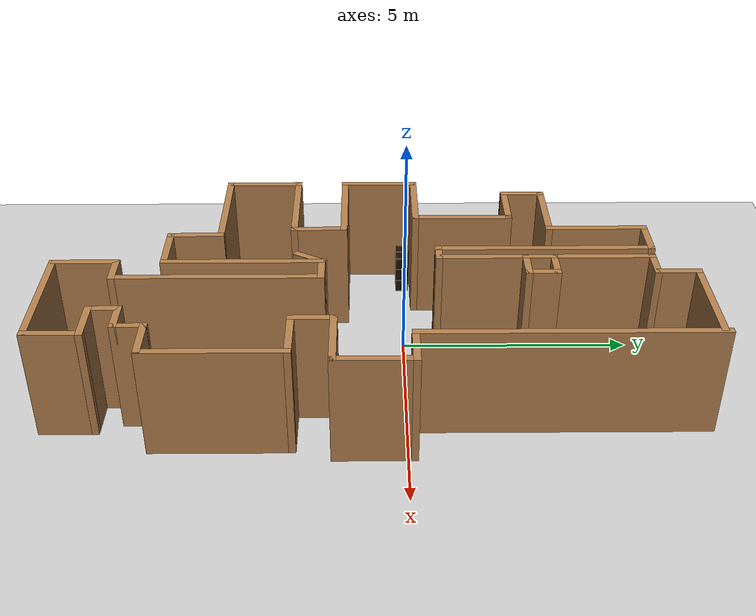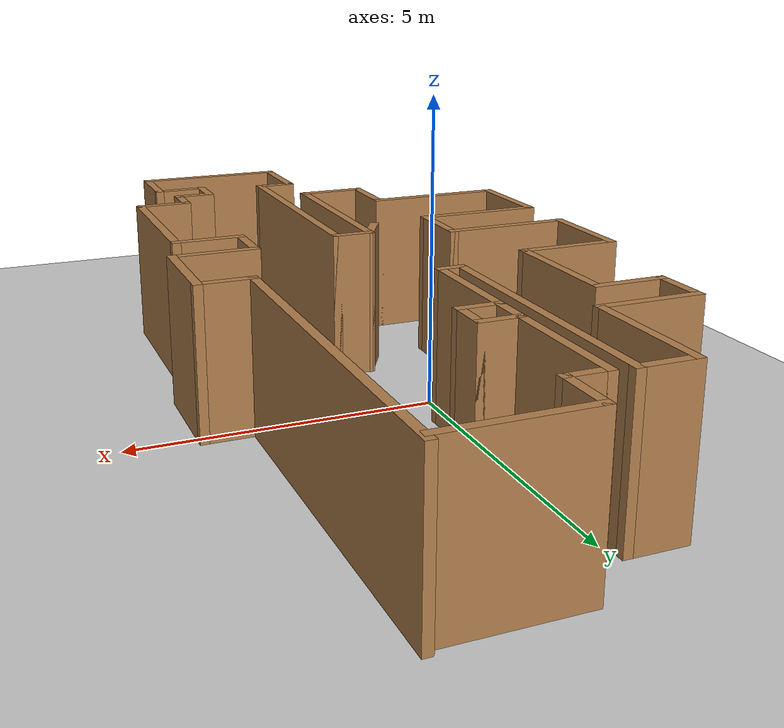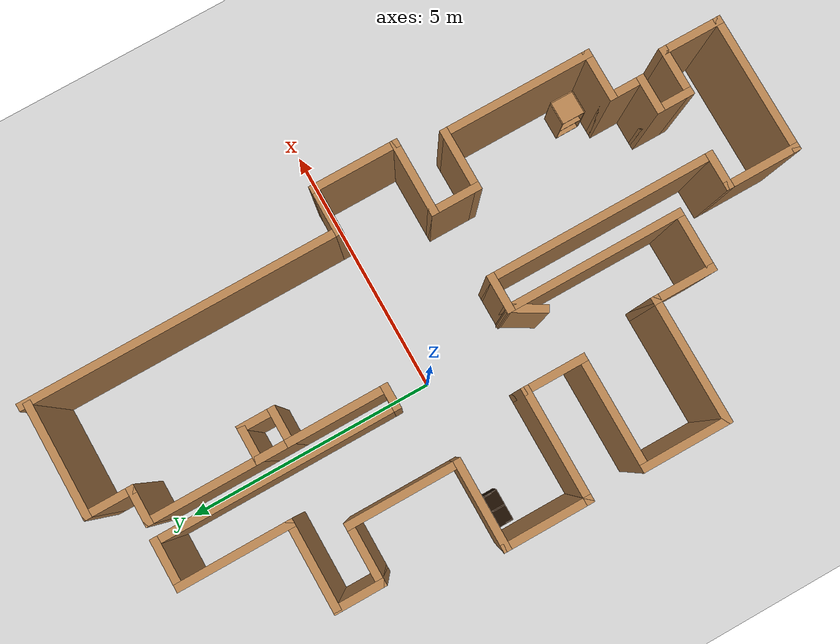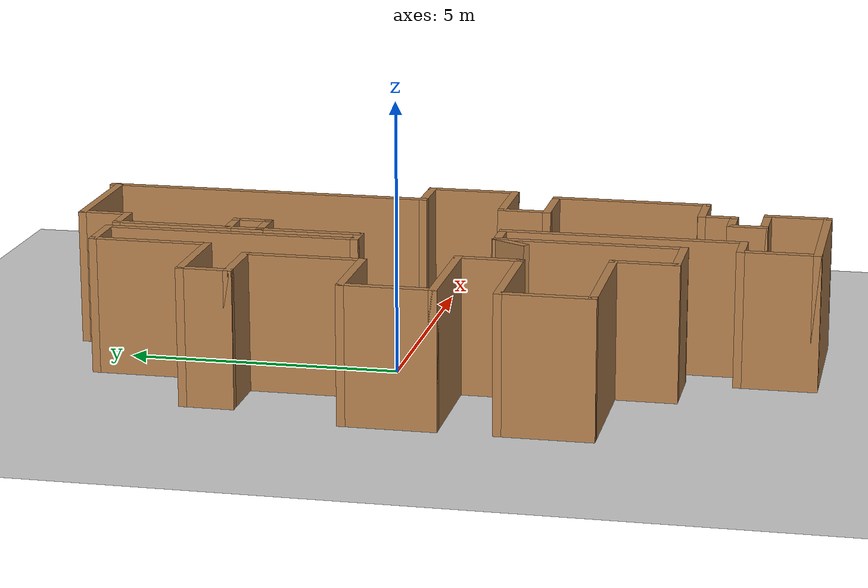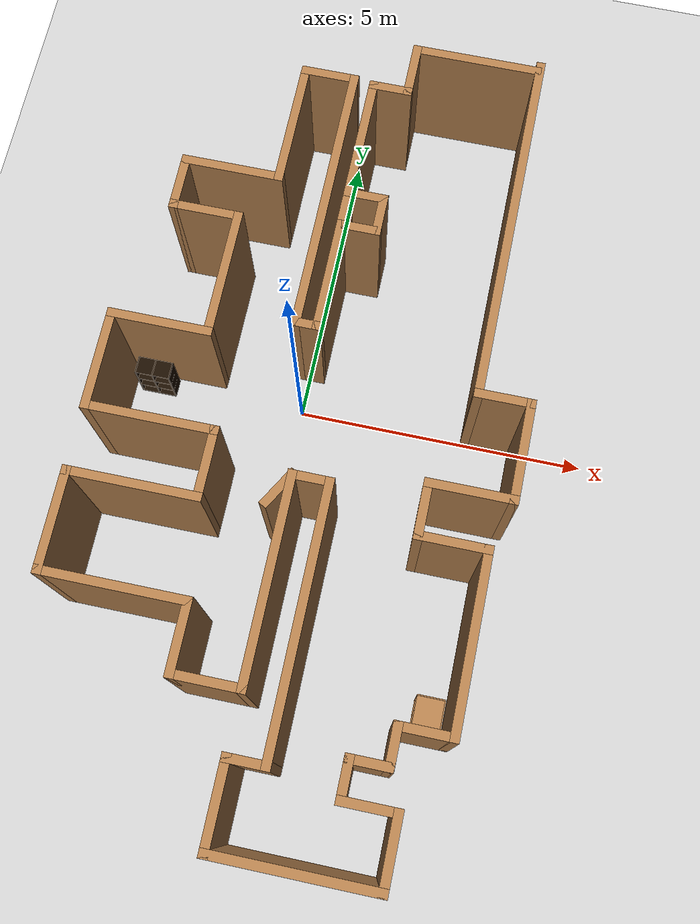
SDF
<sdf version="1.6">
 <world name="default">
  <light name="sun" type="directional">
   <pose>0 0 10 0 -0 0</pose>
   <diffuse>0.8 0.8 0.8 1</diffuse>
   <specular>0.2 0.2 0.2 1</specular>
   <attenuation>
    <range>1000</range>
    <constant>0.9</constant>
    <linear>0.01</linear>
    <quadratic>0.001</quadratic>
   </attenuation>
   <direction>-0.5 0.1 -0.9</direction>
  </light>
  <model name="ground_plane">
   <static>1</static>
   <link name="link">
    <collision name="collision">
     <geometry><plane><normal>0 0 1</normal><size>100 100</size></plane></geometry>
     <surface>
      <contact><collide_bitmask>65535</collide_bitmask></contact>
      <friction><ode><mu>100</mu><mu2>50</mu2></ode></friction>
     </surface>
    </collision>
    <visual name="visual">
     <cast_shadows>0</cast_shadows>
     <geometry><plane><normal>0 0 1</normal><size>100 100</size></plane></geometry>
     <material>
      <script><uri>file://media/materials/scripts/gazebo.material</uri><name>Gazebo/Grey</name></script>
     </material>
    </visual>
   </link>
  </model>
  <gravity>0 0 -9.8</gravity>
  <magnetic_field>6e-06 2.3e-05 -4.2e-05</magnetic_field>
  <atmosphere type="adiabatic"/>
  <physics name="default_physics" default="0" type="ode">
   <max_step_size>0.001</max_step_size>
   <real_time_factor>1</real_time_factor>
   <real_time_update_rate>1000</real_time_update_rate>
  </physics>
  <scene><ambient>0.4 0.4 0.4 1</ambient><background>0.7 0.7 0.7 1</background><shadows>1</shadows></scene>
  <audio><device>default</device></audio>
  <spherical_coordinates>
   <surface_model>EARTH_WGS84</surface_model>
   <latitude_deg>0</latitude_deg>
   <longitude_deg>0</longitude_deg>
   <elevation>0</elevation>
   <heading_deg>0</heading_deg>
  </spherical_coordinates>
  <model name="map_67">
   <pose>0.3366 -0.62153 0 0 -0 0</pose>
   <link name="Wall_10">
    <collision name="Wall_10_Collision">
     <geometry><box><size>2.25 0.15 2.5</size></box></geometry>
     <pose>0 0 1.25 0 -0 0</pose>
    </collision>
    <visual name="Wall_10_Visual">
     <pose>0 0 1.25 0 -0 0</pose>
     <geometry><box><size>2.25 0.15 2.5</size></box></geometry>
     <material>
      <script><uri>file://media/materials/scripts/gazebo.material</uri><name>Gazebo/Wood</name></script>
      <ambient>1 1 1 1</ambient>
     </material>
     <meta><layer>0</layer></meta>
    </visual>
    <pose>1.5 6.75 0 0 -0 3.14159</pose>
   </link>
   <link name="Wall_11">
    <collision name="Wall_11_Collision">
     <geometry><box><size>1 0.15 2.5</size></box></geometry>
     <pose>0 0 1.25 0 -0 0</pose>
    </collision>
    <visual name="Wall_11_Visual">
     <pose>0 0 1.25 0 -0 0</pose>
     <geometry><box><size>1 0.15 2.5</size></box></geometry>
     <material>
      <script><uri>file://media/materials/scripts/gazebo.material</uri><name>Gazebo/Wood</name></script>
      <ambient>1 1 1 1</ambient>
     </material>
     <meta><layer>0</layer></meta>
    </visual>
    <pose>0.45 6.325 0 0 -0 -1.5708</pose>
   </link>
   <link name="Wall_12">
    <collision name="Wall_12_Collision">
     <geometry><box><size>0.75 0.15 2.5</size></box></geometry>
     <pose>0 0 1.25 0 -0 0</pose>
    </collision>
    <visual name="Wall_12_Visual">
     <pose>0 0 1.25 0 -0 0</pose>
     <geometry><box><size>0.75 0.15 2.5</size></box></geometry>
     <material>
      <script><uri>file://media/materials/scripts/gazebo.material</uri><name>Gazebo/Wood</name></script>
      <ambient>1 1 1 1</ambient>
     </material>
     <meta><layer>0</layer></meta>
    </visual>
    <pose>0.15 5.9 0 0 -0 3.14159</pose>
   </link>
   <link name="Wall_13">
    <collision name="Wall_13_Collision">
     <geometry><box><size>2.25 0.15 2.5</size></box></geometry>
     <pose>0 0 1.25 0 -0 0</pose>
    </collision>
    <visual name="Wall_13_Visual">
     <pose>0 0 1.25 0 -0 0</pose>
     <geometry><box><size>2.25 0.15 2.5</size></box></geometry>
     <material>
      <script><uri>file://media/materials/scripts/gazebo.material</uri><name>Gazebo/Wood</name></script>
      <ambient>1 1 1 1</ambient>
     </material>
     <meta><layer>0</layer></meta>
    </visual>
    <pose>-0.15 4.85 0 0 -0 -1.5708</pose>
   </link>
   <link name="Wall_14">
    <collision name="Wall_14_Collision">
     <geometry><box><size>0.75 0.15 2.5</size></box></geometry>
     <pose>0 0 1.25 0 -0 0</pose>
    </collision>
    <visual name="Wall_14_Visual">
     <pose>0 0 1.25 0 -0 0</pose>
     <geometry><box><size>0.75 0.15 2.5</size></box></geometry>
     <material>
      <script><uri>file://media/materials/scripts/gazebo.material</uri><name>Gazebo/Wood</name></script>
      <ambient>1 1 1 1</ambient>
     </material>
     <meta><layer>0</layer></meta>
    </visual>
    <pose>0.15 3.8 0 0 -0 0</pose>
   </link>
   <link name="Wall_15">
    <collision name="Wall_15_Collision">
     <geometry><box><size>0.75 0.15 2.5</size></box></geometry>
     <pose>0 0 1.25 0 -0 0</pose>
    </collision>
    <visual name="Wall_15_Visual">
     <pose>0 0 1.25 0 -0 0</pose>
     <geometry><box><size>0.75 0.15 2.5</size></box></geometry>
     <material>
      <script><uri>file://media/materials/scripts/gazebo.material</uri><name>Gazebo/Wood</name></script>
      <ambient>1 1 1 1</ambient>
     </material>
     <meta><layer>0</layer></meta>
    </visual>
    <pose>0.45 3.5 0 0 -0 -1.5708</pose>
   </link>
   <link name="Wall_16">
    <collision name="Wall_16_Collision">
     <geometry><box><size>0.75 0.15 2.5</size></box></geometry>
     <pose>0 0 1.25 0 -0 0</pose>
    </collision>
    <visual name="Wall_16_Visual">
     <pose>0 0 1.25 0 -0 0</pose>
     <geometry><box><size>0.75 0.15 2.5</size></box></geometry>
     <material>
      <script><uri>file://media/materials/scripts/gazebo.material</uri><name>Gazebo/Wood</name></script>
      <ambient>1 1 1 1</ambient>
     </material>
     <meta><layer>0</layer></meta>
    </visual>
    <pose>0.15 3.2 0 0 -0 3.14159</pose>
   </link>
   <link name="Wall_17">
    <collision name="Wall_17_Collision">
     <geometry><box><size>2 0.15 2.5</size></box></geometry>
     <pose>0 0 1.25 0 -0 0</pose>
    </collision>
    <visual name="Wall_17_Visual">
     <pose>0 0 1.25 0 -0 0</pose>
     <geometry><box><size>2 0.15 2.5</size></box></geometry>
     <material>
      <script><uri>file://media/materials/scripts/gazebo.material</uri><name>Gazebo/Wood</name></script>
      <ambient>1 1 1 1</ambient>
     </material>
     <meta><layer>0</layer></meta>
    </visual>
    <pose>-0.15 2.275 0 0 -0 -1.5708</pose>
   </link>
   <link name="Wall_19">
    <collision name="Wall_19_Collision">
     <geometry><box><size>0.75 0.15 2.5</size></box></geometry>
     <pose>0 0 1.25 0 -0 0</pose>
    </collision>
    <visual name="Wall_19_Visual">
     <pose>0 0 1.25 0 -0 0</pose>
     <geometry><box><size>0.75 0.15 2.5</size></box></geometry>
     <material>
      <script><uri>file://media/materials/scripts/gazebo.material</uri><name>Gazebo/Wood</name></script>
      <ambient>1 1 1 1</ambient>
     </material>
     <meta><layer>0</layer></meta>
    </visual>
    <pose>-0.15 3.5 0 0 -0 -1.5708</pose>
   </link>
   <link name="Wall_21">
    <collision name="Wall_21_Collision">
     <geometry><box><size>0.5 0.15 2.5</size></box></geometry>
     <pose>0 0 1.25 0 -0 0</pose>
    </collision>
    <visual name="Wall_21_Visual">
     <pose>0 0 1.25 0 -0 0</pose>
     <geometry><box><size>0.5 0.15 2.5</size></box></geometry>
     <material>
      <script><uri>file://media/materials/scripts/gazebo.material</uri><name>Gazebo/Wood</name></script>
      <ambient>1 1 1 1</ambient>
     </material>
     <meta><layer>0</layer></meta>
    </visual>
    <pose>-0.325 1.35 0 0 -0 3.14159</pose>
   </link>
   <link name="Wall_22">
    <collision name="Wall_22_Collision">
     <geometry><box><size>4.75 0.15 2.5</size></box></geometry>
     <pose>0 0 1.25 0 -0 0</pose>
    </collision>
    <visual name="Wall_22_Visual">
     <pose>0 0 1.25 0 -0 0</pose>
     <geometry><box><size>4.75 0.15 2.5</size></box></geometry>
     <material>
      <script><uri>file://media/materials/scripts/gazebo.material</uri><name>Gazebo/Wood</name></script>
      <ambient>1 1 1 1</ambient>
     </material>
     <meta><layer>0</layer></meta>
    </visual>
    <pose>-0.5 3.65 0 0 -0 1.5708</pose>
   </link>
   <link name="Wall_23">
    <collision name="Wall_23_Collision">
     <geometry><box><size>1 0.15 2.5</size></box></geometry>
     <pose>0 0 1.25 0 -0 0</pose>
    </collision>
    <visual name="Wall_23_Visual">
     <pose>0 0 1.25 0 -0 0</pose>
     <geometry><box><size>1 0.15 2.5</size></box></geometry>
     <material>
      <script><uri>file://media/materials/scripts/gazebo.material</uri><name>Gazebo/Wood</name></script>
      <ambient>1 1 1 1</ambient>
     </material>
     <meta><layer>0</layer></meta>
    </visual>
    <pose>-0.925 5.95 0 0 -0 3.14159</pose>
   </link>
   <link name="Wall_24">
    <collision name="Wall_24_Collision">
     <geometry><box><size>2.25 0.15 2.5</size></box></geometry>
     <pose>0 0 1.25 0 -0 0</pose>
    </collision>
    <visual name="Wall_24_Visual">
     <pose>0 0 1.25 0 -0 0</pose>
     <geometry><box><size>2.25 0.15 2.5</size></box></geometry>
     <material>
      <script><uri>file://media/materials/scripts/gazebo.material</uri><name>Gazebo/Wood</name></script>
      <ambient>1 1 1 1</ambient>
     </material>
     <meta><layer>0</layer></meta>
    </visual>
    <pose>-1.35 4.9 0 0 -0 -1.5708</pose>
   </link>
   <link name="Wall_25">
    <collision name="Wall_25_Collision">
     <geometry><box><size>1.75 0.15 2.5</size></box></geometry>
     <pose>0 0 1.25 0 -0 0</pose>
    </collision>
    <visual name="Wall_25_Visual">
     <pose>0 0 1.25 0 -0 0</pose>
     <geometry><box><size>1.75 0.15 2.5</size></box></geometry>
     <material>
      <script><uri>file://media/materials/scripts/gazebo.material</uri><name>Gazebo/Wood</name></script>
      <ambient>1 1 1 1</ambient>
     </material>
     <meta><layer>0</layer></meta>
    </visual>
    <pose>-2.15 3.85 0 0 -0 3.14159</pose>
   </link>
   <link name="Wall_26">
    <collision name="Wall_26_Collision">
     <geometry><box><size>1 0.15 2.5</size></box></geometry>
     <pose>0 0 1.25 0 -0 0</pose>
    </collision>
    <visual name="Wall_26_Visual">
     <pose>0 0 1.25 0 -0 0</pose>
     <geometry><box><size>1 0.15 2.5</size></box></geometry>
     <material>
      <script><uri>file://media/materials/scripts/gazebo.material</uri><name>Gazebo/Wood</name></script>
      <ambient>1 1 1 1</ambient>
     </material>
     <meta><layer>0</layer></meta>
    </visual>
    <pose>-2.95 3.425 0 0 -0 -1.5708</pose>
   </link>
   <link name="Wall_27">
    <collision name="Wall_27_Collision">
     <geometry><box><size>1.25 0.15 2.5</size></box></geometry>
     <pose>0 0 1.25 0 -0 0</pose>
    </collision>
    <visual name="Wall_27_Visual">
     <pose>0 0 1.25 0 -0 0</pose>
     <geometry><box><size>1.25 0.15 2.5</size></box></geometry>
     <material>
      <script><uri>file://media/materials/scripts/gazebo.material</uri><name>Gazebo/Wood</name></script>
      <ambient>1 1 1 1</ambient>
     </material>
     <meta><layer>0</layer></meta>
    </visual>
    <pose>-2.4 3 0 0 -0 0</pose>
   </link>
   <link name="Wall_28">
    <collision name="Wall_28_Collision">
     <geometry><box><size>2.25 0.15 2.5</size></box></geometry>
     <pose>0 0 1.25 0 -0 0</pose>
    </collision>
    <visual name="Wall_28_Visual">
     <pose>0 0 1.25 0 -0 0</pose>
     <geometry><box><size>2.25 0.15 2.5</size></box></geometry>
     <material>
      <script><uri>file://media/materials/scripts/gazebo.material</uri><name>Gazebo/Wood</name></script>
      <ambient>1 1 1 1</ambient>
     </material>
     <meta><layer>0</layer></meta>
    </visual>
    <pose>-1.85 1.95 0 0 -0 -1.5708</pose>
   </link>
   <link name="Wall_29">
    <collision name="Wall_29_Collision">
     <geometry><box><size>1.75 0.15 2.5</size></box></geometry>
     <pose>0 0 1.25 0 -0 0</pose>
    </collision>
    <visual name="Wall_29_Visual">
     <pose>0 0 1.25 0 -0 0</pose>
     <geometry><box><size>1.75 0.15 2.5</size></box></geometry>
     <material>
      <script><uri>file://media/materials/scripts/gazebo.material</uri><name>Gazebo/Wood</name></script>
      <ambient>1 1 1 1</ambient>
     </material>
     <meta><layer>0</layer></meta>
    </visual>
    <pose>-2.65 0.9 0 0 -0 3.14159</pose>
   </link>
   <link name="Wall_30">
    <collision name="Wall_30_Collision">
     <geometry><box><size>1.75 0.15 2.5</size></box></geometry>
     <pose>0 0 1.25 0 -0 0</pose>
    </collision>
    <visual name="Wall_30_Visual">
     <pose>0 0 1.25 0 -0 0</pose>
     <geometry><box><size>1.75 0.15 2.5</size></box></geometry>
     <material>
      <script><uri>file://media/materials/scripts/gazebo.material</uri><name>Gazebo/Wood</name></script>
      <ambient>1 1 1 1</ambient>
     </material>
     <meta><layer>0</layer></meta>
    </visual>
    <pose>-3.45 0.1 0 0 -0 -1.5708</pose>
   </link>
   <link name="Wall_31">
    <collision name="Wall_31_Collision">
     <geometry><box><size>2.25 0.15 2.5</size></box></geometry>
     <pose>0 0 1.25 0 -0 0</pose>
    </collision>
    <visual name="Wall_31_Visual">
     <pose>0 0 1.25 0 -0 0</pose>
     <geometry><box><size>2.25 0.15 2.5</size></box></geometry>
     <material>
      <script><uri>file://media/materials/scripts/gazebo.material</uri><name>Gazebo/Wood</name></script>
      <ambient>1 1 1 1</ambient>
     </material>
     <meta><layer>0</layer></meta>
    </visual>
    <pose>-2.4 -0.7 0 0 -0 0</pose>
   </link>
   <link name="Wall_32">
    <collision name="Wall_32_Collision">
     <geometry><box><size>1.25 0.15 2.5</size></box></geometry>
     <pose>0 0 1.25 0 -0 0</pose>
    </collision>
    <visual name="Wall_32_Visual">
     <pose>0 0 1.25 0 -0 0</pose>
     <geometry><box><size>1.25 0.15 2.5</size></box></geometry>
     <material>
      <script><uri>file://media/materials/scripts/gazebo.material</uri><name>Gazebo/Wood</name></script>
      <ambient>1 1 1 1</ambient>
     </material>
     <meta><layer>0</layer></meta>
    </visual>
    <pose>-1.35 -1.25 0 0 -0 -1.5708</pose>
   </link>
   <link name="Wall_34">
    <collision name="Wall_34_Collision">
     <geometry><box><size>2.25 0.15 2.5</size></box></geometry>
     <pose>0 0 1.25 0 -0 0</pose>
    </collision>
    <visual name="Wall_34_Visual">
     <pose>0 0 1.25 0 -0 0</pose>
     <geometry><box><size>2.25 0.15 2.5</size></box></geometry>
     <material>
      <script><uri>file://media/materials/scripts/gazebo.material</uri><name>Gazebo/Wood</name></script>
      <ambient>1 1 1 1</ambient>
     </material>
     <meta><layer>0</layer></meta>
    </visual>
    <pose>-2.4 -1.8 0 0 -0 3.14159</pose>
   </link>
   <link name="Wall_35">
    <collision name="Wall_35_Collision">
     <geometry><box><size>1.75 0.15 2.5</size></box></geometry>
     <pose>0 0 1.25 0 -0 0</pose>
    </collision>
    <visual name="Wall_35_Visual">
     <pose>0 0 1.25 0 -0 0</pose>
     <geometry><box><size>1.75 0.15 2.5</size></box></geometry>
     <material>
      <script><uri>file://media/materials/scripts/gazebo.material</uri><name>Gazebo/Wood</name></script>
      <ambient>1 1 1 1</ambient>
     </material>
     <meta><layer>0</layer></meta>
    </visual>
    <pose>-3.45 -2.6 0 0 -0 -1.5708</pose>
   </link>
   <link name="Wall_36">
    <collision name="Wall_36_Collision">
     <geometry><box><size>2.5 0.15 2.5</size></box></geometry>
     <pose>0 0 1.25 0 -0 0</pose>
    </collision>
    <visual name="Wall_36_Visual">
     <pose>0 0 1.25 0 -0 0</pose>
     <geometry><box><size>2.5 0.15 2.5</size></box></geometry>
     <material>
      <script><uri>file://media/materials/scripts/gazebo.material</uri><name>Gazebo/Wood</name></script>
      <ambient>1 1 1 1</ambient>
     </material>
     <meta><layer>0</layer></meta>
    </visual>
    <pose>-2.275 -3.4 0 0 -0 0</pose>
   </link>
   <link name="Wall_37">
    <collision name="Wall_37_Collision">
     <geometry><box><size>1.25 0.15 2.5</size></box></geometry>
     <pose>0 0 1.25 0 -0 0</pose>
    </collision>
    <visual name="Wall_37_Visual">
     <pose>0 0 1.25 0 -0 0</pose>
     <geometry><box><size>1.25 0.15 2.5</size></box></geometry>
     <material>
      <script><uri>file://media/materials/scripts/gazebo.material</uri><name>Gazebo/Wood</name></script>
      <ambient>1 1 1 1</ambient>
     </material>
     <meta><layer>0</layer></meta>
    </visual>
    <pose>-1.1 -3.95 0 0 -0 -1.5708</pose>
   </link>
   <link name="Wall_38">
    <collision name="Wall_38_Collision">
     <geometry><box><size>1.25 0.15 2.5</size></box></geometry>
     <pose>0 0 1.25 0 -0 0</pose>
    </collision>
    <visual name="Wall_38_Visual">
     <pose>0 0 1.25 0 -0 0</pose>
     <geometry><box><size>1.25 0.15 2.5</size></box></geometry>
     <material>
      <script><uri>file://media/materials/scripts/gazebo.material</uri><name>Gazebo/Wood</name></script>
      <ambient>1 1 1 1</ambient>
     </material>
     <meta><layer>0</layer></meta>
    </visual>
    <pose>-0.55 -4.5 0 0 -0 0</pose>
   </link>
   <link name="Wall_39">
    <collision name="Wall_39_Collision">
     <geometry><box><size>3.5 0.15 2.5</size></box></geometry>
     <pose>0 0 1.25 0 -0 0</pose>
    </collision>
    <visual name="Wall_39_Visual">
     <pose>0 0 1.25 0 -0 0</pose>
     <geometry><box><size>3.5 0.15 2.5</size></box></geometry>
     <material>
      <script><uri>file://media/materials/scripts/gazebo.material</uri><name>Gazebo/Wood</name></script>
      <ambient>1 1 1 1</ambient>
     </material>
     <meta><layer>0</layer></meta>
    </visual>
    <pose>0 -2.825 0 0 -0 1.5708</pose>
   </link>
   <link name="Wall_40">
    <collision name="Wall_40_Collision">
     <geometry><box><size>0.75 0.15 2.5</size></box></geometry>
     <pose>0 0 1.25 0 -0 0</pose>
    </collision>
    <visual name="Wall_40_Visual">
     <pose>0 0 1.25 0 -0 0</pose>
     <geometry><box><size>0.75 0.15 2.5</size></box></geometry>
     <material>
      <script><uri>file://media/materials/scripts/gazebo.material</uri><name>Gazebo/Wood</name></script>
      <ambient>1 1 1 1</ambient>
     </material>
     <meta><layer>0</layer></meta>
    </visual>
    <pose>0.3 -1.15 0 0 -0 0</pose>
   </link>
   <link name="Wall_41">
    <collision name="Wall_41_Collision">
     <geometry><box><size>4.5 0.15 2.5</size></box></geometry>
     <pose>0 0 1.25 0 -0 0</pose>
    </collision>
    <visual name="Wall_41_Visual">
     <pose>0 0 1.25 0 -0 0</pose>
     <geometry><box><size>4.5 0.15 2.5</size></box></geometry>
     <material>
      <script><uri>file://media/materials/scripts/gazebo.material</uri><name>Gazebo/Wood</name></script>
      <ambient>1 1 1 1</ambient>
     </material>
     <meta><layer>0</layer></meta>
    </visual>
    <pose>0.6 -3.325 0 0 -0 -1.5708</pose>
   </link>
   <link name="Wall_42">
    <collision name="Wall_42_Collision">
     <geometry><box><size>0.75 0.15 2.5</size></box></geometry>
     <pose>0 0 1.25 0 -0 0</pose>
    </collision>
    <visual name="Wall_42_Visual">
     <pose>0 0 1.25 0 -0 0</pose>
     <geometry><box><size>0.75 0.15 2.5</size></box></geometry>
     <material>
      <script><uri>file://media/materials/scripts/gazebo.material</uri><name>Gazebo/Wood</name></script>
      <ambient>1 1 1 1</ambient>
     </material>
     <meta><layer>0</layer></meta>
    </visual>
    <pose>0.3 -5.5 0 0 -0 3.14159</pose>
   </link>
   <link name="Wall_43">
    <collision name="Wall_43_Collision">
     <geometry><box><size>1.5 0.15 2.5</size></box></geometry>
     <pose>0 0 1.25 0 -0 0</pose>
    </collision>
    <visual name="Wall_43_Visual">
     <pose>0 0 1.25 0 -0 0</pose>
     <geometry><box><size>1.5 0.15 2.5</size></box></geometry>
     <material>
      <script><uri>file://media/materials/scripts/gazebo.material</uri><name>Gazebo/Wood</name></script>
      <ambient>1 1 1 1</ambient>
     </material>
     <meta><layer>0</layer></meta>
    </visual>
    <pose>0 -6.175 0 0 -0 -1.5708</pose>
   </link>
   <link name="Wall_44">
    <collision name="Wall_44_Collision">
     <geometry><box><size>2.75 0.15 2.5</size></box></geometry>
     <pose>0 0 1.25 0 -0 0</pose>
    </collision>
    <visual name="Wall_44_Visual">
     <pose>0 0 1.25 0 -0 0</pose>
     <geometry><box><size>2.75 0.15 2.5</size></box></geometry>
     <material>
      <script><uri>file://media/materials/scripts/gazebo.material</uri><name>Gazebo/Wood</name></script>
      <ambient>1 1 1 1</ambient>
     </material>
     <meta><layer>0</layer></meta>
    </visual>
    <pose>1.3 -6.85 0 0 -0 0</pose>
   </link>
   <link name="Wall_45">
    <collision name="Wall_45_Collision">
     <geometry><box><size>1.25 0.15 2.5</size></box></geometry>
     <pose>0 0 1.25 0 -0 0</pose>
    </collision>
    <visual name="Wall_45_Visual">
     <pose>0 0 1.25 0 -0 0</pose>
     <geometry><box><size>1.25 0.15 2.5</size></box></geometry>
     <material>
      <script><uri>file://media/materials/scripts/gazebo.material</uri><name>Gazebo/Wood</name></script>
      <ambient>1 1 1 1</ambient>
     </material>
     <meta><layer>0</layer></meta>
    </visual>
    <pose>2.6 -6.3 0 0 -0 1.5708</pose>
   </link>
   <link name="Wall_46">
    <collision name="Wall_46_Collision">
     <geometry><box><size>1 0.15 2.5</size></box></geometry>
     <pose>0 0 1.25 0 -0 0</pose>
    </collision>
    <visual name="Wall_46_Visual">
     <pose>0 0 1.25 0 -0 0</pose>
     <geometry><box><size>1 0.15 2.5</size></box></geometry>
     <material>
      <script><uri>file://media/materials/scripts/gazebo.material</uri><name>Gazebo/Wood</name></script>
      <ambient>1 1 1 1</ambient>
     </material>
     <meta><layer>0</layer></meta>
    </visual>
    <pose>2.175 -5.75 0 0 -0 3.14159</pose>
   </link>
   <link name="Wall_47">
    <collision name="Wall_47_Collision">
     <geometry><box><size>0.75 0.15 2.5</size></box></geometry>
     <pose>0 0 1.25 0 -0 0</pose>
    </collision>
    <visual name="Wall_47_Visual">
     <pose>0 0 1.25 0 -0 0</pose>
     <geometry><box><size>0.75 0.15 2.5</size></box></geometry>
     <material>
      <script><uri>file://media/materials/scripts/gazebo.material</uri><name>Gazebo/Wood</name></script>
      <ambient>1 1 1 1</ambient>
     </material>
     <meta><layer>0</layer></meta>
    </visual>
    <pose>1.75 -5.45 0 0 -0 1.5708</pose>
   </link>
   <link name="Wall_48">
    <collision name="Wall_48_Collision">
     <geometry><box><size>0.75 0.15 2.5</size></box></geometry>
     <pose>0 0 1.25 0 -0 0</pose>
    </collision>
    <visual name="Wall_48_Visual">
     <pose>0 0 1.25 0 -0 0</pose>
     <geometry><box><size>0.75 0.15 2.5</size></box></geometry>
     <material>
      <script><uri>file://media/materials/scripts/gazebo.material</uri><name>Gazebo/Wood</name></script>
      <ambient>1 1 1 1</ambient>
     </material>
     <meta><layer>0</layer></meta>
    </visual>
    <pose>2.05 -5.15 0 0 -0 0</pose>
   </link>
   <link name="Wall_49">
    <collision name="Wall_49_Collision">
     <geometry><box><size>0.75 0.15 2.5</size></box></geometry>
     <pose>0 0 1.25 0 -0 0</pose>
    </collision>
    <visual name="Wall_49_Visual">
     <pose>0 0 1.25 0 -0 0</pose>
     <geometry><box><size>0.75 0.15 2.5</size></box></geometry>
     <material>
      <script><uri>file://media/materials/scripts/gazebo.material</uri><name>Gazebo/Wood</name></script>
      <ambient>1 1 1 1</ambient>
     </material>
     <meta><layer>0</layer></meta>
    </visual>
    <pose>2.35 -4.85 0 0 -0 1.5708</pose>
   </link>
   <link name="Wall_52">
    <collision name="Wall_52_Collision">
     <geometry><box><size>1 0.15 2.5</size></box></geometry>
     <pose>0 0 1.25 0 -0 0</pose>
    </collision>
    <visual name="Wall_52_Visual">
     <pose>0 0 1.25 0 -0 0</pose>
     <geometry><box><size>1 0.15 2.5</size></box></geometry>
     <material>
      <script><uri>file://media/materials/scripts/gazebo.material</uri><name>Gazebo/Wood</name></script>
      <ambient>1 1 1 1</ambient>
     </material>
     <meta><layer>0</layer></meta>
    </visual>
    <pose>2.775 -4.55 0 0 -0 0</pose>
   </link>
   <link name="Wall_53">
    <collision name="Wall_53_Collision">
     <geometry><box><size>3 0.15 2.5</size></box></geometry>
     <pose>0 0 1.25 0 -0 0</pose>
    </collision>
    <visual name="Wall_53_Visual">
     <pose>0 0 1.25 0 -0 0</pose>
     <geometry><box><size>3 0.15 2.5</size></box></geometry>
     <material>
      <script><uri>file://media/materials/scripts/gazebo.material</uri><name>Gazebo/Wood</name></script>
      <ambient>1 1 1 1</ambient>
     </material>
     <meta><layer>0</layer></meta>
    </visual>
    <pose>3.2 -3.125 0 0 -0 1.5708</pose>
   </link>
   <link name="Wall_54">
    <collision name="Wall_54_Collision">
     <geometry><box><size>1.25 0.15 2.5</size></box></geometry>
     <pose>0 0 1.25 0 -0 0</pose>
    </collision>
    <visual name="Wall_54_Visual">
     <pose>0 0 1.25 0 -0 0</pose>
     <geometry><box><size>1.25 0.15 2.5</size></box></geometry>
     <material>
      <script><uri>file://media/materials/scripts/gazebo.material</uri><name>Gazebo/Wood</name></script>
      <ambient>1 1 1 1</ambient>
     </material>
     <meta><layer>0</layer></meta>
    </visual>
    <pose>2.65 -1.7 0 0 -0 3.14159</pose>
   </link>
   <link name="Wall_55">
    <collision name="Wall_55_Collision">
     <geometry><box><size>1 0.15 2.5</size></box></geometry>
     <pose>0 0 1.25 0 -0 0</pose>
    </collision>
    <visual name="Wall_55_Visual">
     <pose>0 0 1.25 0 -0 0</pose>
     <geometry><box><size>1 0.15 2.5</size></box></geometry>
     <material>
      <script><uri>file://media/materials/scripts/gazebo.material</uri><name>Gazebo/Wood</name></script>
      <ambient>1 1 1 1</ambient>
     </material>
     <meta><layer>0</layer></meta>
    </visual>
    <pose>2.1 -1.275 0 0 -0 1.5708</pose>
   </link>
   <link name="Wall_56">
    <collision name="Wall_56_Collision">
     <geometry><box><size>1.5 0.15 2.5</size></box></geometry>
     <pose>0 0 1.25 0 -0 0</pose>
    </collision>
    <visual name="Wall_56_Visual">
     <pose>0 0 1.25 0 -0 0</pose>
     <geometry><box><size>1.5 0.15 2.5</size></box></geometry>
     <material>
      <script><uri>file://media/materials/scripts/gazebo.material</uri><name>Gazebo/Wood</name></script>
      <ambient>1 1 1 1</ambient>
     </material>
     <meta><layer>0</layer></meta>
    </visual>
    <pose>2.775 -0.85 0 0 -0 0</pose>
   </link>
   <link name="Wall_57">
    <collision name="Wall_57_Collision">
     <geometry><box><size>1.75 0.15 2.5</size></box></geometry>
     <pose>0 0 1.25 0 -0 0</pose>
    </collision>
    <visual name="Wall_57_Visual">
     <pose>0 0 1.25 0 -0 0</pose>
     <geometry><box><size>1.75 0.15 2.5</size></box></geometry>
     <material>
      <script><uri>file://media/materials/scripts/gazebo.material</uri><name>Gazebo/Wood</name></script>
      <ambient>1 1 1 1</ambient>
     </material>
     <meta><layer>0</layer></meta>
    </visual>
    <pose>3.45 -0.05 0 0 -0 1.5708</pose>
   </link>
   <link name="Wall_58">
    <collision name="Wall_58_Collision">
     <geometry><box><size>1 0.15 2.5</size></box></geometry>
     <pose>0 0 1.25 0 -0 0</pose>
    </collision>
    <visual name="Wall_58_Visual">
     <pose>0 0 1.25 0 -0 0</pose>
     <geometry><box><size>1 0.15 2.5</size></box></geometry>
     <material>
      <script><uri>file://media/materials/scripts/gazebo.material</uri><name>Gazebo/Wood</name></script>
      <ambient>1 1 1 1</ambient>
     </material>
     <meta><layer>0</layer></meta>
    </visual>
    <pose>3.025 0.75 0 0 -0 3.14159</pose>
   </link>
   <link name="Wall_59">
    <collision name="Wall_59_Collision">
     <geometry><box><size>6.25 0.15 2.5</size></box></geometry>
     <pose>0 0 1.25 0 -0 0</pose>
    </collision>
    <visual name="Wall_59_Visual">
     <pose>0 0 1.25 0 -0 0</pose>
     <geometry><box><size>6.25 0.15 2.5</size></box></geometry>
     <material>
      <script><uri>file://media/materials/scripts/gazebo.material</uri><name>Gazebo/Wood</name></script>
      <ambient>1 1 1 1</ambient>
     </material>
     <meta><layer>0</layer></meta>
    </visual>
    <pose>2.6 3.8 0 0 -0 1.5708</pose>
   </link>
   <link name="Wall_61">
    <collision name="Wall_61_Collision">
     <geometry><box><size>0.75 0.15 2.5</size></box></geometry>
     <pose>0 0 1.25 0 -0 0</pose>
    </collision>
    <visual name="Wall_61_Visual">
     <pose>0 0 1.25 0 -0 0</pose>
     <geometry><box><size>0.75 0.15 2.5</size></box></geometry>
     <material>
      <script><uri>file://media/materials/scripts/gazebo.material</uri><name>Gazebo/Wood</name></script>
      <ambient>1 1 1 1</ambient>
     </material>
     <meta><layer>0</layer></meta>
    </visual>
    <pose>-0.15 -1.40981 0 0 -0 -2.0944</pose>
   </link>
   <static>1</static>
  </model>
  <model name="cabinet">
   <static>1</static>
   <link name="cabinet_bottom_plate">
    <inertial>
     <pose>0 0 -1 0 -0 0</pose>
     <inertia><ixx>2.05</ixx><ixy>0</ixy><ixz>0</ixz><iyy>2.05</iyy><iyz>0</iyz><izz>2.05</izz></inertia>
     <mass>25</mass>
    </inertial>
    <collision name="cabinet_bottom_plate_geom">
     <pose>0 0 0.01 0 -0 0</pose>
     <geometry><box><size>0.45 0.45 0.02</size></box></geometry>
    </collision>
    <visual name="cabinet_bottom_plate_geom_visual">
     <pose>0 0 0.01 0 -0 0</pose>
     <geometry><box><size>0.45 0.45 0.02</size></box></geometry>
     <material>
      <script><uri>file://media/materials/scripts/gazebo.material</uri><name>Gazebo/Wood</name></script>
     </material>
    </visual>
    <collision name="cabinet_bottom_plate_geom_cabinet_back_plate">
     <pose>0.235 0 0.51 0 -0 0</pose>
     <geometry><box><size>0.02 0.45 1.02</size></box></geometry>
    </collision>
    <visual name="cabinet_bottom_plate_geom_cabinet_back_plate_visual">
     <pose>0.235 0 0.51 0 -0 0</pose>
     <geometry><box><size>0.02 0.45 1.02</size></box></geometry>
     <material>
      <script><uri>file://media/materials/scripts/gazebo.material</uri><name>Gazebo/Wood</name></script>
     </material>
    </visual>
    <collision name="cabinet_bottom_plate_geom_cabinet_left_plate">
     <pose>0 0.235 0.51 0 -0 0</pose>
     <geometry><box><size>0.45 0.02 1.02</size></box></geometry>
    </collision>
    <visual name="cabinet_bottom_plate_geom_cabinet_left_plate_visual">
     <pose>0 0.235 0.51 0 -0 0</pose>
     <geometry><box><size>0.45 0.02 1.02</size></box></geometry>
     <material>
      <script><uri>file://media/materials/scripts/gazebo.material</uri><name>Gazebo/Wood</name></script>
     </material>
    </visual>
    <collision name="cabinet_bottom_plate_geom_cabinet_middle_plate">
     <pose>0 0 0.51 0 -0 0</pose>
     <geometry><box><size>0.45 0.45 0.02</size></box></geometry>
    </collision>
    <visual name="cabinet_bottom_plate_geom_cabinet_middle_plate_visual">
     <pose>0 0 0.51 0 -0 0</pose>
     <geometry><box><size>0.45 0.45 0.02</size></box></geometry>
     <material>
      <script><uri>file://media/materials/scripts/gazebo.material</uri><name>Gazebo/Wood</name></script>
     </material>
    </visual>
    <collision name="cabinet_bottom_plate_geom_cabinet_right_plate">
     <pose>0 -0.235 0.51 0 -0 0</pose>
     <geometry><box><size>0.45 0.02 1.02</size></box></geometry>
    </collision>
    <visual name="cabinet_bottom_plate_geom_cabinet_right_plate_visual">
     <pose>0 -0.235 0.51 0 -0 0</pose>
     <geometry><box><size>0.45 0.02 1.02</size></box></geometry>
     <material>
      <script><uri>file://media/materials/scripts/gazebo.material</uri><name>Gazebo/Wood</name></script>
     </material>
    </visual>
    <collision name="cabinet_bottom_plate_geom_cabinet_top_plate">
     <pose>0 0 1.01 0 -0 0</pose>
     <geometry><box><size>0.45 0.45 0.02</size></box></geometry>
    </collision>
    <visual name="cabinet_bottom_plate_geom_cabinet_top_plate_visual">
     <pose>0 0 1.01 0 -0 0</pose>
     <geometry><box><size>0.45 0.45 0.02</size></box></geometry>
     <material>
      <script><uri>file://media/materials/scripts/gazebo.material</uri><name>Gazebo/Wood</name></script>
     </material>
    </visual>
   </link>
   <pose>3.15139 -4.76367 0 0 -0 0</pose>
  </model>
  <model name="6_Cube_StorageE">
   <link name="Wall_0">
    <pose>0 0 0.01 0 -0 0</pose>
    <inertial>
     <mass>1.6201</mass>
     <inertia><ixx>0.0119</ixx><iyy>0.0631</iyy><izz>0.0513</izz><ixy>0</ixy><ixz>0</ixz><iyz>0</iyz></inertia>
    </inertial>
    <collision name="Wall_0_Collision"><geometry><box><size>0.616 0.296 0.02</size></box></geometry></collision>
    <visual name="Wall_0_Visual">
     <geometry><box><size>0.616 0.296 0.02</size></box></geometry>
     <material>
      <script><uri>file://media/materials/scripts/gazebo.material</uri><name>Gazebo/Grey</name></script>
      <ambient>0.105882 0.0509804 0 1</ambient>
     </material>
    </visual>
   </link>
   <joint name="0_2" type="fixed">
    <pose>-0.308 0 0 0 -0 0</pose>
    <parent>Wall_2</parent>
    <child>Wall_0</child>
    <axis>
     <xyz>1 0 0</xyz>
     <use_parent_model_frame>0</use_parent_model_frame>
     <limit><lower>-1e+16</lower><upper>1e+16</upper></limit>
    </axis>
   </joint>
   <joint name="0_12" type="fixed">
    <parent>Wall_12</parent>
    <child>Wall_0</child>
    <axis>
     <xyz>0 0 1</xyz>
     <use_parent_model_frame>0</use_parent_model_frame>
     <limit><lower>-1e+16</lower><upper>1e+16</upper></limit>
    </axis>
   </joint>
   <joint name="0_4" type="fixed">
    <pose>0.308 0 0 0 -0 0</pose>
    <parent>Wall_4</parent>
    <child>Wall_0</child>
    <axis>
     <xyz>1 0 0</xyz>
     <use_parent_model_frame>0</use_parent_model_frame>
     <limit><lower>-1e+16</lower><upper>1e+16</upper></limit>
    </axis>
   </joint>
   <link name="Wall_10">
    <pose>0 0 0.61 0 -0 0</pose>
    <inertial>
     <mass>1.6201</mass>
     <inertia><ixx>0.0119</ixx><iyy>0.0631</iyy><izz>0.0513</izz><ixy>0</ixy><ixz>0</ixz><iyz>0</iyz></inertia>
    </inertial>
    <collision name="Wall_10_Collision"><geometry><box><size>0.616 0.296 0.02</size></box></geometry></collision>
    <visual name="Wall_10_Visual">
     <geometry><box><size>0.616 0.296 0.02</size></box></geometry>
     <material>
      <script><uri>file://media/materials/scripts/gazebo.material</uri><name>Gazebo/Grey</name></script>
      <ambient>0.105882 0.0509804 0 1</ambient>
     </material>
    </visual>
   </link>
   <joint name="10_2" type="fixed">
    <pose>-0.308 0 0 0 -0 0</pose>
    <parent>Wall_2</parent>
    <child>Wall_10</child>
    <axis>
     <xyz>1 0 0</xyz>
     <use_parent_model_frame>0</use_parent_model_frame>
     <limit><lower>-1e+16</lower><upper>1e+16</upper></limit>
    </axis>
   </joint>
   <joint name="10_12" type="fixed">
    <parent>Wall_12</parent>
    <child>Wall_10</child>
    <axis>
     <xyz>0 0 1</xyz>
     <use_parent_model_frame>0</use_parent_model_frame>
     <limit><lower>-1e+16</lower><upper>1e+16</upper></limit>
    </axis>
   </joint>
   <joint name="10_4" type="fixed">
    <pose>0.308 0 0 0 -0 0</pose>
    <parent>Wall_4</parent>
    <child>Wall_10</child>
    <axis>
     <xyz>1 0 0</xyz>
     <use_parent_model_frame>0</use_parent_model_frame>
     <limit><lower>-1e+16</lower><upper>1e+16</upper></limit>
    </axis>
   </joint>
   <link name="Wall_12">
    <pose>0 0 0.4575 0 -0 0</pose>
    <inertial>
     <mass>2.4065</mass>
     <inertia><ixx>0.0177</ixx><iyy>0.1855</iyy><izz>0.168</izz><ixy>0</ixy><ixz>0</ixz><iyz>0</iyz></inertia>
    </inertial>
    <collision name="Wall_12_Collision"><geometry><box><size>0.02 0.296 0.915</size></box></geometry></collision>
    <visual name="Wall_12_Visual">
     <geometry><box><size>0.02 0.296 0.915</size></box></geometry>
     <material>
      <script><uri>file://media/materials/scripts/gazebo.material</uri><name>Gazebo/Grey</name></script>
      <ambient>0.105882 0.0509804 0 1</ambient>
     </material>
    </visual>
   </link>
   <link name="Wall_2">
    <pose>-0.298 0 0.4575 0 -0 0</pose>
    <inertial>
     <mass>2.4065</mass>
     <inertia><ixx>0.0177</ixx><iyy>0.1855</iyy><izz>0.168</izz><ixy>0</ixy><ixz>0</ixz><iyz>0</iyz></inertia>
    </inertial>
    <collision name="Wall_2_Collision"><geometry><box><size>0.02 0.296 0.915</size></box></geometry></collision>
    <visual name="Wall_2_Visual">
     <geometry><box><size>0.02 0.296 0.915</size></box></geometry>
     <material>
      <script><uri>file://media/materials/scripts/gazebo.material</uri><name>Gazebo/Grey</name></script>
      <ambient>0.105882 0.0509804 0 1</ambient>
     </material>
    </visual>
   </link>
   <link name="Wall_4">
    <pose>0.298 0 0.4575 0 -0 0</pose>
    <inertial>
     <mass>2.4065</mass>
     <inertia><ixx>0.0177</ixx><iyy>0.1855</iyy><izz>0.168</izz><ixy>0</ixy><ixz>0</ixz><iyz>0</iyz></inertia>
    </inertial>
    <collision name="Wall_4_Collision"><geometry><box><size>0.02 0.296 0.915</size></box></geometry></collision>
    <visual name="Wall_4_Visual">
     <geometry><box><size>0.02 0.296 0.915</size></box></geometry>
     <material>
      <script><uri>file://media/materials/scripts/gazebo.material</uri><name>Gazebo/Grey</name></script>
      <ambient>0.105882 0.0509804 0 1</ambient>
     </material>
    </visual>
   </link>
   <link name="Wall_6">
    <pose>0 0 0.905 0 -0 0</pose>
    <inertial>
     <mass>1.6201</mass>
     <inertia><ixx>0.0119</ixx><iyy>0.0631</iyy><izz>0.0513</izz><ixy>0</ixy><ixz>0</ixz><iyz>0</iyz></inertia>
    </inertial>
    <collision name="Wall_6_Collision"><geometry><box><size>0.616 0.296 0.02</size></box></geometry></collision>
    <visual name="Wall_6_Visual">
     <geometry><box><size>0.616 0.296 0.02</size></box></geometry>
     <material>
      <script><uri>file://media/materials/scripts/gazebo.material</uri><name>Gazebo/Grey</name></script>
      <ambient>0.105882 0.0509804 0 1</ambient>
     </material>
    </visual>
   </link>
   <joint name="6_2" type="fixed">
    <pose>-0.308 0 0 0 -0 0</pose>
    <parent>Wall_2</parent>
    <child>Wall_6</child>
    <axis>
     <xyz>2 0 0</xyz>
     <use_parent_model_frame>0</use_parent_model_frame>
     <limit><lower>-1e+16</lower><upper>1e+16</upper></limit>
    </axis>
   </joint>
   <joint name="6_12" type="fixed">
    <parent>Wall_12</parent>
    <child>Wall_6</child>
    <axis>
     <xyz>0 0 1</xyz>
     <use_parent_model_frame>0</use_parent_model_frame>
     <limit><lower>-1e+16</lower><upper>1e+16</upper></limit>
    </axis>
   </joint>
   <joint name="6_4" type="fixed">
    <pose>0.308 0 0 0 -0 0</pose>
    <parent>Wall_4</parent>
    <child>Wall_6</child>
    <axis>
     <xyz>1 0 0</xyz>
     <use_parent_model_frame>0</use_parent_model_frame>
     <limit><lower>-1e+16</lower><upper>1e+16</upper></limit>
    </axis>
   </joint>
   <link name="Wall_8">
    <pose>0 0 0.305 0 -0 0</pose>
    <inertial>
     <mass>1.6201</mass>
     <inertia><ixx>0.0119</ixx><iyy>0.0631</iyy><izz>0.0513</izz><ixy>0</ixy><ixz>0</ixz><iyz>0</iyz></inertia>
    </inertial>
    <collision name="Wall_8_Collision"><geometry><box><size>0.616 0.296 0.02</size></box></geometry></collision>
    <visual name="Wall_8_Visual">
     <geometry><box><size>0.616 0.296 0.02</size></box></geometry>
     <material>
      <script><uri>file://media/materials/scripts/gazebo.material</uri><name>Gazebo/Grey</name></script>
      <ambient>0.105882 0.0509804 0 1</ambient>
     </material>
    </visual>
   </link>
   <joint name="8_2" type="fixed">
    <pose>-0.308 0 0 0 -0 0</pose>
    <parent>Wall_2</parent>
    <child>Wall_8</child>
    <axis>
     <xyz>1 0 0</xyz>
     <use_parent_model_frame>0</use_parent_model_frame>
     <limit><lower>-1e+16</lower><upper>1e+16</upper></limit>
    </axis>
   </joint>
   <joint name="8_12" type="fixed">
    <parent>Wall_12</parent>
    <child>Wall_8</child>
    <axis>
     <xyz>0 0 1</xyz>
     <use_parent_model_frame>0</use_parent_model_frame>
     <limit><lower>-1e+16</lower><upper>1e+16</upper></limit>
    </axis>
   </joint>
   <joint name="8_4" type="fixed">
    <pose>0.308 0 0 0 -0 0</pose>
    <parent>Wall_4</parent>
    <child>Wall_8</child>
    <axis>
     <xyz>1 0 0</xyz>
     <use_parent_model_frame>0</use_parent_model_frame>
     <limit><lower>-1e+16</lower><upper>1e+16</upper></limit>
    </axis>
   </joint>
   <static>1</static>
   <pose>-2.60109 0.019911 0 0 -0 0</pose>
  </model>
 </world>
</sdf>
